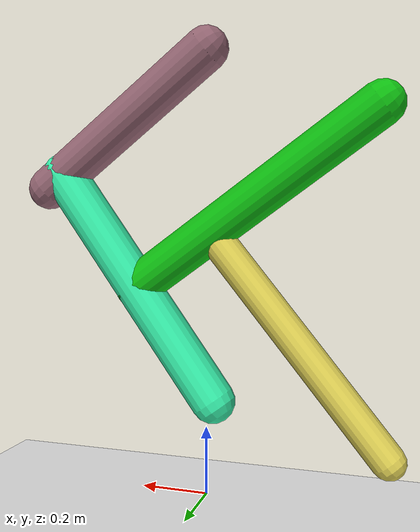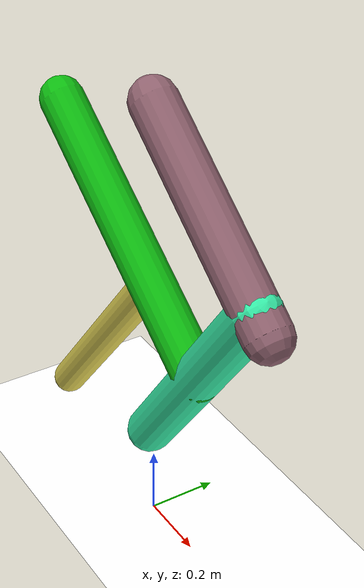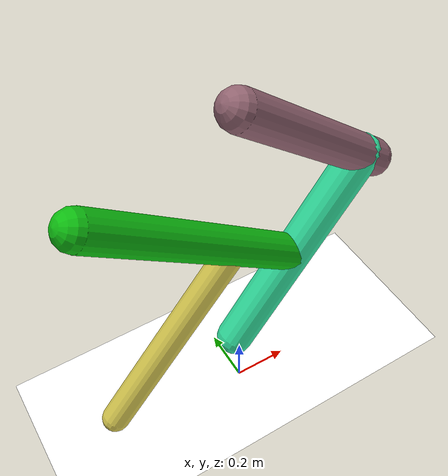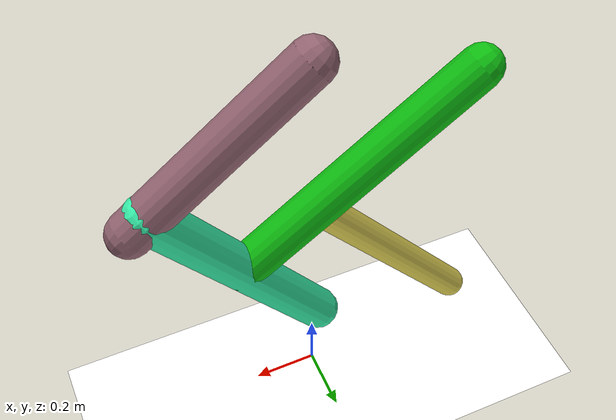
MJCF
<mujoco model="morphology">
  <option timestep="0.01"/>
  <default>
    <default class="/"/>
  </default>
  <asset>
    <texture name="texplane" type="2d" builtin="checker" rgb1="0.1 0.2 0.3" rgb2="0.2 0.3 0.4" width="300" height="300"/>
    <material name="MatPlane" class="/" texture="texplane" texrepeat="20 20" specular="1" shininess="1" reflectance="0.5"/>
  </asset>
  <worldbody>
    <light name="//unnamed_light_0" class="/" directional="true" pos="0 0 1.5" dir="0 0 -1.3" cutoff="1e+02" exponent="1" diffuse="1 1 1" specular="0.1 0.1 0.1"/>
    <geom name="ground" class="/" type="plane" size="15 15 0.5" material="MatPlane" rgba="1 1 1 1"/>
    <body name="body" pos="0 0 1.3">
      <geom name="geom0" class="/" type="capsule" contype="1" conaffinity="1" condim="3" size="0.065" rgba="0.57 0.39 0.44 1" friction="0.4 0.1 0.1" fromto="0 0 0 0.51 0 -0.39"/>
      <body name="body1" pos="0.46 0 -0.35">
        <geom name="geom1" class="/" type="capsule" contype="1" conaffinity="1" condim="3" size="0.066" rgba="0.21 0.93 0.66 1" friction="0.4 0.1 0.1" fromto="0 0 0 -0.48 0 -0.67"/>
        <body name="body2" pos="-0.24 0 -0.34">
          <geom name="geom2" class="/" type="capsule" contype="1" conaffinity="1" condim="3" size="0.064" rgba="0.055 0.74 0.067 1" friction="0.4 0.1 0.1" fromto="0 0 0 -0.71 0 0.51"/>
          <body name="body3" pos="-0.23 0 0.17">
            <geom name="geom3" class="/" type="capsule" contype="1" conaffinity="1" condim="3" size="0.05" rgba="0.88 0.82 0.33 1" friction="0.4 0.1 0.1" fromto="0 0 0 -0.51 0 -0.63"/>
            <joint name="joint3" class="/" type="hinge" axis="0 1 0" limited="true" stiffness="20" range="-68 68" armature="0.1" damping="2"/>
          </body>
          <joint name="joint2" class="/" type="hinge" axis="0 1 0" limited="true" stiffness="20" range="-40 40" armature="0.1" damping="2"/>
        </body>
        <joint name="joint1" class="/" type="hinge" axis="0 1 0" limited="true" stiffness="20" range="-37 37" armature="0.1" damping="2"/>
      </body>
      <joint name="rootx" class="/" type="slide" axis="1 0 0" limited="false" stiffness="0" armature="0" damping="0"/>
      <joint name="rootz" class="/" type="slide" axis="0 0 1" limited="false" stiffness="0" armature="0" damping="0"/>
      <joint name="rooty" class="/" type="hinge" axis="0 1 0" limited="false" stiffness="0" armature="0" damping="0"/>
    </body>
  </worldbody>
  <actuator>
    <motor name="motor3" class="/" ctrllimited="true" ctrlrange="-1 1" gear="1.3e+02" joint="joint3"/>
    <motor name="motor2" class="/" ctrllimited="true" ctrlrange="-1 1" gear="1.9e+02" joint="joint2"/>
    <motor name="motor1" class="/" ctrllimited="true" ctrlrange="-1 1" gear="1.4e+02" joint="joint1"/>
  </actuator>
  <sensor>
    <subtreelinvel name="velocity" body="body"/>
  </sensor>
</mujoco>
